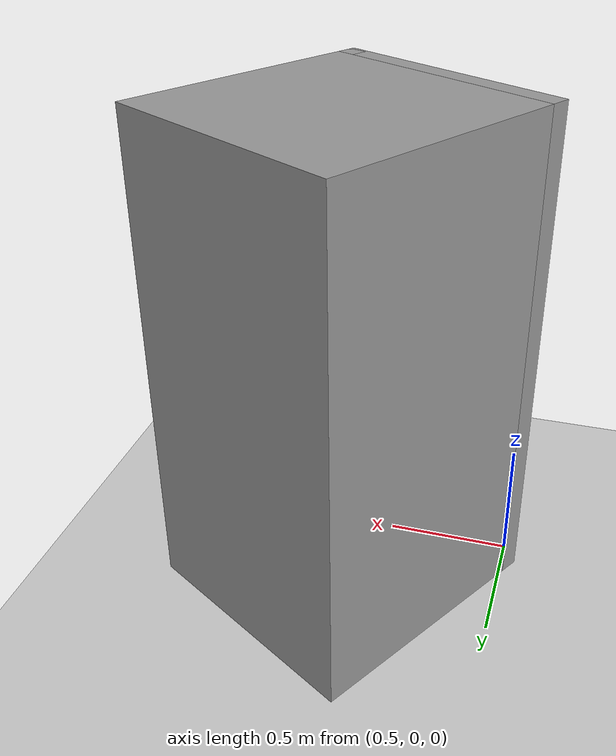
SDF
<sdf version="1.6">
 <world name="default">
  <scene>
   <ambient>0.2 0.2 0.2 1</ambient>
   <background>1 1 1 1</background>
   <shadows>0</shadows>
   <grid>0</grid>
   <origin_visual>0</origin_visual>
  </scene>
  <gravity>0 0 -9.8</gravity>
  <magnetic_field>6e-06 2.3e-05 -4.2e-05</magnetic_field>
  <atmosphere type="adiabatic"/>
  <physics name="dart_2ms" default="1" type="dart">
   <max_step_size>0.002</max_step_size>
   <real_time_factor>2</real_time_factor>
   <real_time_update_rate>-1</real_time_update_rate>
  </physics>
  <spherical_coordinates>
   <surface_model>EARTH_WGS84</surface_model>
   <latitude_deg>0</latitude_deg>
   <longitude_deg>0</longitude_deg>
   <elevation>0</elevation>
   <heading_deg>0</heading_deg>
  </spherical_coordinates>
  <model name="ground_plane">
   <static>1</static>
   <link name="link">
    <collision name="collision">
     <geometry><plane><normal>0 0 1</normal><size>100 100</size></plane></geometry>
     <surface>
      <contact><collide_bitmask>65535</collide_bitmask></contact>
      <friction><ode><mu>100</mu><mu2>50</mu2></ode></friction>
     </surface>
    </collision>
    <visual name="visual">
     <cast_shadows>0</cast_shadows>
     <geometry><plane><normal>0 0 1</normal><size>100 100</size></plane></geometry>
     <material>
      <script><uri>file://media/materials/scripts/gazebo.material</uri><name>Gazebo/Grey</name></script>
     </material>
    </visual>
   </link>
   <pose>1.72751 -3.39885 0 0 -0 0</pose>
  </model>
  <light name="user_point_light_0" type="point">
   <pose>-0.732846 0.62524 1 0 -0 0</pose>
   <diffuse>0.5 0.5 0.5 1</diffuse>
   <specular>0.1 0.1 0.1 1</specular>
   <attenuation>
    <range>20</range>
    <constant>0.5</constant>
    <linear>0.01</linear>
    <quadratic>0.001</quadratic>
   </attenuation>
   <cast_shadows>0</cast_shadows>
   <direction>0 0 -1</direction>
  </light>
  <audio><device>default</device></audio>
  <model name="beer">
   <link name="link_0_clone">
    <inertial>
     <mass>10.99086</mass>
     <inertia>
      <ixx>0.823456</ixx>
      <ixy>0</ixy>
      <ixz>0</ixz>
      <iyy>0.823456</iyy>
      <iyz>0</iyz>
      <izz>0.331809</izz>
     </inertia>
    </inertial>
    <pose>0.487173 0.105317 0.018684 0 -0 0</pose>
    <visual name="visual">
     <geometry><box><size>1 1 1.99084</size></box></geometry>
     <material>
      <lighting>1</lighting>
      <script><uri>file://media/materials/scripts/gazebo.material</uri><name>Gazebo/Grey</name></script>
      <shader type="pixel"/>
      <emissive>0 0 0 1</emissive>
     </material>
    </visual>
    <collision name="collision">
     <geometry><box><size>1 1 1.99084</size></box></geometry>
     <surface>
      <friction>
       <ode><mu>1</mu><mu2>1</mu2><fdir1>0 0 0</fdir1><slip1>0</slip1><slip2>0</slip2></ode>
       <torsional>
        <coefficient>1</coefficient>
        <patch_radius>0</patch_radius>
        <surface_radius>0</surface_radius>
        <use_patch_radius>1</use_patch_radius>
        <ode><slip>0</slip></ode>
       </torsional>
      </friction>
      <bounce><restitution_coefficient>0</restitution_coefficient><threshold>1e+06</threshold></bounce>
      <contact>
       <collide_without_contact>0</collide_without_contact>
       <collide_without_contact_bitmask>1</collide_without_contact_bitmask>
       <collide_bitmask>1</collide_bitmask>
       <ode>
        <soft_cfm>0</soft_cfm>
        <soft_erp>0.2</soft_erp>
        <kp>1e+13</kp>
        <kd>1</kd>
        <max_vel>0.01</max_vel>
        <min_depth>0</min_depth>
       </ode>
       <bullet>
        <split_impulse>1</split_impulse>
        <split_impulse_penetration_threshold>-0.01</split_impulse_penetration_threshold>
        <soft_cfm>0</soft_cfm>
        <soft_erp>0.2</soft_erp>
        <kp>1e+13</kp>
        <kd>1</kd>
       </bullet>
      </contact>
     </surface>
    </collision>
   </link>
   <link name="link_0_clone_0">
    <inertial>
     <mass>0.16002</mass>
     <inertia>
      <ixx>0.0661874</ixx>
      <ixy>0</ixy>
      <ixz>0</ixz>
      <iyy>0.0529386</iyy>
      <iyz>0</iyz>
      <izz>0.0134212</izz>
     </inertia>
    </inertial>
    <pose>-0.053017 0.105317 0.018684 0 -0 0</pose>
    <visual name="visual">
     <geometry><box><size>0.080381 1 1.99084</size></box></geometry>
     <material>
      <lighting>1</lighting>
      <script><uri>file://media/materials/scripts/gazebo.material</uri><name>Gazebo/Grey</name></script>
      <shader type="pixel"/>
      <emissive>0 0 0 1</emissive>
     </material>
    </visual>
    <collision name="collision">
     <geometry><box><size>0.080381 1 1.99084</size></box></geometry>
     <surface>
      <friction>
       <ode><mu>1</mu><mu2>1</mu2><fdir1>0 0 0</fdir1><slip1>0</slip1><slip2>0</slip2></ode>
       <torsional>
        <coefficient>1</coefficient>
        <patch_radius>0</patch_radius>
        <surface_radius>0</surface_radius>
        <use_patch_radius>1</use_patch_radius>
        <ode><slip>0</slip></ode>
       </torsional>
      </friction>
      <bounce><restitution_coefficient>0</restitution_coefficient><threshold>1e+06</threshold></bounce>
      <contact>
       <collide_without_contact>0</collide_without_contact>
       <collide_without_contact_bitmask>1</collide_without_contact_bitmask>
       <collide_bitmask>1</collide_bitmask>
       <ode>
        <soft_cfm>0</soft_cfm>
        <soft_erp>0.2</soft_erp>
        <kp>1e+13</kp>
        <kd>1</kd>
        <max_vel>0.01</max_vel>
        <min_depth>0</min_depth>
       </ode>
       <bullet>
        <split_impulse>1</split_impulse>
        <split_impulse_penetration_threshold>-0.01</split_impulse_penetration_threshold>
        <soft_cfm>0</soft_cfm>
        <soft_erp>0.2</soft_erp>
        <kp>1e+13</kp>
        <kd>1</kd>
       </bullet>
      </contact>
     </surface>
    </collision>
   </link>
   <link name="rot_point">
    <inertial>
     <mass>0.0121187</mass>
     <inertia>
      <ixx>0.00400845</ixx>
      <ixy>0</ixy>
      <ixz>0</ixz>
      <iyy>0.00400918</iyy>
      <iyz>0</iyz>
      <izz>1.2317e-05</izz>
     </inertia>
    </inertial>
    <pose>-0.053017 -0.356817 0.018684 0 -0 0</pose>
    <visual name="visual">
     <geometry><box><size>0.080381 0.075731 1.99084</size></box></geometry>
     <material>
      <lighting>1</lighting>
      <script><uri>file://media/materials/scripts/gazebo.material</uri><name>Gazebo/Grey</name></script>
      <shader type="pixel"/>
      <emissive>0 0 0 1</emissive>
     </material>
    </visual>
    <collision name="collision">
     <geometry><box><size>0.080381 0.075731 1.99084</size></box></geometry>
     <surface>
      <friction>
       <ode><mu>1</mu><mu2>1</mu2><fdir1>0 0 0</fdir1><slip1>0</slip1><slip2>0</slip2></ode>
       <torsional>
        <coefficient>1</coefficient>
        <patch_radius>0</patch_radius>
        <surface_radius>0</surface_radius>
        <use_patch_radius>1</use_patch_radius>
        <ode><slip>0</slip></ode>
       </torsional>
      </friction>
      <bounce><restitution_coefficient>0</restitution_coefficient><threshold>1e+06</threshold></bounce>
      <contact>
       <collide_without_contact>0</collide_without_contact>
       <collide_without_contact_bitmask>1</collide_without_contact_bitmask>
       <collide_bitmask>1</collide_bitmask>
       <ode>
        <soft_cfm>0</soft_cfm>
        <soft_erp>0.2</soft_erp>
        <kp>1e+13</kp>
        <kd>1</kd>
        <max_vel>0.01</max_vel>
        <min_depth>0</min_depth>
       </ode>
       <bullet>
        <split_impulse>1</split_impulse>
        <split_impulse_penetration_threshold>-0.01</split_impulse_penetration_threshold>
        <soft_cfm>0</soft_cfm>
        <soft_erp>0.2</soft_erp>
        <kp>1e+13</kp>
        <kd>1</kd>
       </bullet>
      </contact>
     </surface>
    </collision>
   </link>
   <link name="handle">
    <inertial>
     <mass>0.00421932</mass>
     <inertia>
      <ixx>0.00096682</ixx>
      <ixy>0</ixy>
      <ixz>0</ixz>
      <iyy>0.00096682</iyy>
      <iyz>0</iyz>
      <izz>1.34567e-06</izz>
     </inertia>
    </inertial>
    <pose>-0.190569 0.493083 -0.028026 0 -0 0</pose>
    <visual name="visual">
     <geometry><cylinder><radius>0.0252559</radius><length>1.65764</length></cylinder></geometry>
     <material>
      <lighting>1</lighting>
      <script><uri>file://media/materials/scripts/gazebo.material</uri><name>Gazebo/Grey</name></script>
      <shader type="pixel"/>
      <emissive>0 0 0 1</emissive>
     </material>
    </visual>
    <collision name="collision">
     <geometry><cylinder><radius>0.025256</radius><length>1.65764</length></cylinder></geometry>
     <surface>
      <friction>
       <ode><mu>1</mu><mu2>1</mu2><fdir1>0 0 0</fdir1><slip1>0</slip1><slip2>0</slip2></ode>
       <torsional>
        <coefficient>1</coefficient>
        <patch_radius>0</patch_radius>
        <surface_radius>0</surface_radius>
        <use_patch_radius>1</use_patch_radius>
        <ode><slip>0</slip></ode>
       </torsional>
      </friction>
      <bounce><restitution_coefficient>0</restitution_coefficient><threshold>1e+06</threshold></bounce>
      <contact>
       <collide_without_contact>0</collide_without_contact>
       <collide_without_contact_bitmask>1</collide_without_contact_bitmask>
       <collide_bitmask>1</collide_bitmask>
       <ode>
        <soft_cfm>0</soft_cfm>
        <soft_erp>0.2</soft_erp>
        <kp>1e+13</kp>
        <kd>1</kd>
        <max_vel>0.01</max_vel>
        <min_depth>0</min_depth>
       </ode>
       <bullet>
        <split_impulse>1</split_impulse>
        <split_impulse_penetration_threshold>-0.01</split_impulse_penetration_threshold>
        <soft_cfm>0</soft_cfm>
        <soft_erp>0.2</soft_erp>
        <kp>1e+13</kp>
        <kd>1</kd>
       </bullet>
      </contact>
     </surface>
    </collision>
   </link>
   <link name="handle_twin">
    <inertial>
     <mass>0.00421932</mass>
     <inertia>
      <ixx>0.00096682</ixx>
      <ixy>0</ixy>
      <ixz>0</ixz>
      <iyy>0.00096682</iyy>
      <iyz>0</iyz>
      <izz>1.34567e-06</izz>
     </inertia>
    </inertial>
    <pose>-0.190569 -0.346907 -0.028026 0 -0 0</pose>
    <visual name="visual">
     <geometry><cylinder><radius>0.0252559</radius><length>1.65764</length></cylinder></geometry>
     <material>
      <lighting>1</lighting>
      <script><uri>file://media/materials/scripts/gazebo.material</uri><name>Gazebo/Grey</name></script>
      <shader type="pixel"/>
      <emissive>0 0 0 1</emissive>
     </material>
    </visual>
    <collision name="collision">
     <geometry><cylinder><radius>0.025256</radius><length>1.65764</length></cylinder></geometry>
     <surface>
      <friction>
       <ode><mu>1</mu><mu2>1</mu2><fdir1>0 0 0</fdir1><slip1>0</slip1><slip2>0</slip2></ode>
       <torsional>
        <coefficient>1</coefficient>
        <patch_radius>0</patch_radius>
        <surface_radius>0</surface_radius>
        <use_patch_radius>1</use_patch_radius>
        <ode><slip>0</slip></ode>
       </torsional>
      </friction>
      <bounce><restitution_coefficient>0</restitution_coefficient><threshold>1e+06</threshold></bounce>
      <contact>
       <collide_without_contact>0</collide_without_contact>
       <collide_without_contact_bitmask>1</collide_without_contact_bitmask>
       <collide_bitmask>1</collide_bitmask>
       <ode>
        <soft_cfm>0</soft_cfm>
        <soft_erp>0.2</soft_erp>
        <kp>1e+13</kp>
        <kd>1</kd>
        <max_vel>0.01</max_vel>
        <min_depth>0</min_depth>
       </ode>
       <bullet>
        <split_impulse>1</split_impulse>
        <split_impulse_penetration_threshold>-0.01</split_impulse_penetration_threshold>
        <soft_cfm>0</soft_cfm>
        <soft_erp>0.2</soft_erp>
        <kp>1e+13</kp>
        <kd>1</kd>
       </bullet>
      </contact>
     </surface>
    </collision>
   </link>
   <joint name="link_0_clone_0_JOINT_0" type="fixed">
    <parent>link_0_clone_0</parent>
    <child>rot_point</child>
    <physics>
     <ode><limit><cfm>0</cfm><erp>0.2</erp></limit><suspension><cfm>0</cfm><erp>0.2</erp></suspension></ode>
    </physics>
   </joint>
   <joint name="link_0_clone_0_JOINT_2" type="fixed">
    <parent>link_0_clone_0</parent>
    <child>handle</child>
    <physics>
     <ode><limit><cfm>0</cfm><erp>0.2</erp></limit><suspension><cfm>0</cfm><erp>0.2</erp></suspension></ode>
    </physics>
   </joint>
   <joint name="link_0_clone_0_JOINT_3" type="fixed">
    <parent>link_0_clone_0</parent>
    <child>handle_twin</child>
    <physics>
     <ode><limit><cfm>0</cfm><erp>0.2</erp></limit><suspension><cfm>0</cfm><erp>0.2</erp></suspension></ode>
    </physics>
   </joint>
   <joint name="link_0_clone_JOINT_1" type="revolute">
    <parent>link_0_clone</parent>
    <child>link_0_clone_0</child>
    <pose>0 -0.5 0 0 -0 0</pose>
    <axis>
     <xyz>0 0 1</xyz>
     <use_parent_model_frame>0</use_parent_model_frame>
     <limit>
      <lower>-1.79769e+308</lower>
      <upper>1.79769e+308</upper>
      <effort>-1</effort>
      <velocity>-1</velocity>
     </limit>
     <dynamics>
      <spring_reference>0</spring_reference>
      <spring_stiffness>0</spring_stiffness>
      <damping>0</damping>
     </dynamics>
    </axis>
    <physics>
     <ode><limit><cfm>0</cfm><erp>0.2</erp></limit><suspension><cfm>0</cfm><erp>0.2</erp></suspension></ode>
    </physics>
   </joint>
   <static>0</static>
   <pose>1.01403 -0.137363 0.976736 0 -0 1.04573</pose>
  </model>
 </world>
</sdf>
